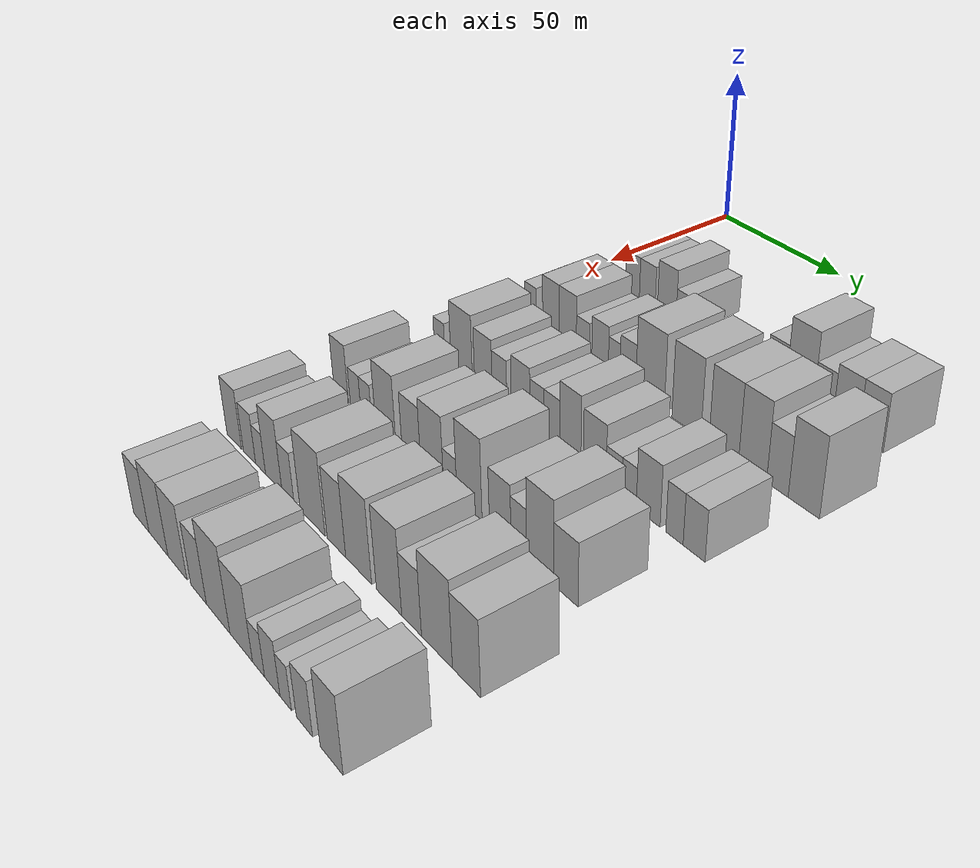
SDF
<sdf version="1.6">
 <world name="default">
  <model name="building_65">
   <static>1</static>
   <pose>50.0000 21.7936 0 0.000000 0.000000 0.000000</pose>
   <link name="link">
    <pose>0 0 7.50 0 0 0</pose>
    <collision name="collision"><geometry><box><size>20.0000 6.4729 15.0000</size></box></geometry></collision>
    <visual name="visual">
     <cast_shadows>0</cast_shadows>
     <geometry><box><size>20.0000 6.4729 15.0000</size></box></geometry>
     <material>
      <script>
       <uri>model://HANNAS_wall/materials/scripts</uri>
       <uri>model://HANNAS_wall/materials/textures</uri>
       <name>vrc/HANNAS_wall</name>
      </script>
     </material>
    </visual>
   </link>
  </model>
  <model name="building_66">
   <static>1</static>
   <pose>50.0000 28.6067 0 0.000000 0.000000 0.000000</pose>
   <link name="link">
    <pose>0 0 7.50 0 0 0</pose>
    <collision name="collision"><geometry><box><size>20.0000 7.1533 15.0000</size></box></geometry></collision>
    <visual name="visual">
     <cast_shadows>0</cast_shadows>
     <geometry><box><size>20.0000 7.1533 15.0000</size></box></geometry>
     <material>
      <script>
       <uri>model://HANNAS_wall/materials/scripts</uri>
       <uri>model://HANNAS_wall/materials/textures</uri>
       <name>vrc/HANNAS_wall</name>
      </script>
     </material>
    </visual>
   </link>
  </model>
  <model name="building_67">
   <static>1</static>
   <pose>50.0000 37.2827 0 0.000000 0.000000 0.000000</pose>
   <link name="link">
    <pose>0 0 9.00 0 0 0</pose>
    <collision name="collision"><geometry><box><size>20.0000 8.1987 18.0000</size></box></geometry></collision>
    <visual name="visual">
     <cast_shadows>0</cast_shadows>
     <geometry><box><size>20.0000 8.1987 18.0000</size></box></geometry>
     <material>
      <script>
       <uri>model://HANNAS_wall/materials/scripts</uri>
       <uri>model://HANNAS_wall/materials/textures</uri>
       <name>vrc/HANNAS_wall</name>
      </script>
     </material>
    </visual>
   </link>
  </model>
  <model name="building_68">
   <static>1</static>
   <pose>50.0000 44.2342 0 0.000000 0.000000 0.000000</pose>
   <link name="link">
    <pose>0 0 6.00 0 0 0</pose>
    <collision name="collision"><geometry><box><size>20.0000 5.7043 12.0000</size></box></geometry></collision>
    <visual name="visual">
     <cast_shadows>0</cast_shadows>
     <geometry><box><size>20.0000 5.7043 12.0000</size></box></geometry>
     <material>
      <script>
       <uri>model://HANNAS_wall/materials/scripts</uri>
       <uri>model://HANNAS_wall/materials/textures</uri>
       <name>vrc/HANNAS_wall</name>
      </script>
     </material>
    </visual>
   </link>
  </model>
  <model name="building_69">
   <static>1</static>
   <pose>50.0000 81.9519 0 0.000000 0.000000 0.000000</pose>
   <link name="link">
    <pose>0 0 7.50 0 0 0</pose>
    <collision name="collision"><geometry><box><size>20.0000 7.2437 15.0000</size></box></geometry></collision>
    <visual name="visual">
     <cast_shadows>0</cast_shadows>
     <geometry><box><size>20.0000 7.2437 15.0000</size></box></geometry>
     <material>
      <script>
       <uri>model://HANNAS_wall/materials/scripts</uri>
       <uri>model://HANNAS_wall/materials/textures</uri>
       <name>vrc/HANNAS_wall</name>
      </script>
     </material>
    </visual>
   </link>
  </model>
  <model name="building_70">
   <static>1</static>
   <pose>50.0000 90.5914 0 0.000000 0.000000 0.000000</pose>
   <link name="link">
    <pose>0 0 12.00 0 0 0</pose>
    <collision name="collision"><geometry><box><size>20.0000 10.0355 24.0000</size></box></geometry></collision>
    <visual name="visual">
     <cast_shadows>0</cast_shadows>
     <geometry><box><size>20.0000 10.0355 24.0000</size></box></geometry>
     <material>
      <script>
       <uri>model://HANNAS_wall/materials/scripts</uri>
       <uri>model://HANNAS_wall/materials/textures</uri>
       <name>vrc/HANNAS_wall</name>
      </script>
     </material>
    </visual>
   </link>
  </model>
  <model name="building_71">
   <static>1</static>
   <pose>50.0000 99.0993 0 0.000000 0.000000 0.000000</pose>
   <link name="link">
    <pose>0 0 7.50 0 0 0</pose>
    <collision name="collision"><geometry><box><size>20.0000 6.9803 15.0000</size></box></geometry></collision>
    <visual name="visual">
     <cast_shadows>0</cast_shadows>
     <geometry><box><size>20.0000 6.9803 15.0000</size></box></geometry>
     <material>
      <script>
       <uri>model://HANNAS_wall/materials/scripts</uri>
       <uri>model://HANNAS_wall/materials/textures</uri>
       <name>vrc/HANNAS_wall</name>
      </script>
     </material>
    </visual>
   </link>
  </model>
  <model name="building_72">
   <static>1</static>
   <pose>50.0000 107.0059 0 0.000000 0.000000 0.000000</pose>
   <link name="link">
    <pose>0 0 9.00 0 0 0</pose>
    <collision name="collision"><geometry><box><size>20.0000 8.8329 18.0000</size></box></geometry></collision>
    <visual name="visual">
     <cast_shadows>0</cast_shadows>
     <geometry><box><size>20.0000 8.8329 18.0000</size></box></geometry>
     <material>
      <script>
       <uri>model://HANNAS_wall/materials/scripts</uri>
       <uri>model://HANNAS_wall/materials/textures</uri>
       <name>vrc/HANNAS_wall</name>
      </script>
     </material>
    </visual>
   </link>
  </model>
  <model name="building_73">
   <static>1</static>
   <pose>50.0000 115.6059 0 0.000000 0.000000 0.000000</pose>
   <link name="link">
    <pose>0 0 9.00 0 0 0</pose>
    <collision name="collision"><geometry><box><size>20.0000 8.3672 18.0000</size></box></geometry></collision>
    <visual name="visual">
     <cast_shadows>0</cast_shadows>
     <geometry><box><size>20.0000 8.3672 18.0000</size></box></geometry>
     <material>
      <script>
       <uri>model://HANNAS_wall/materials/scripts</uri>
       <uri>model://HANNAS_wall/materials/textures</uri>
       <name>vrc/HANNAS_wall</name>
      </script>
     </material>
    </visual>
   </link>
  </model>
  <model name="building_185">
   <static>1</static>
   <pose>82.0000 13.7027 0 0.000000 0.000000 0.000000</pose>
   <link name="link">
    <pose>0 0 6.00 0 0 0</pose>
    <collision name="collision"><geometry><box><size>20.0000 5.6120 12.0000</size></box></geometry></collision>
    <visual name="visual">
     <cast_shadows>0</cast_shadows>
     <geometry><box><size>20.0000 5.6120 12.0000</size></box></geometry>
     <material>
      <script>
       <uri>model://HANNAS_wall/materials/scripts</uri>
       <uri>model://HANNAS_wall/materials/textures</uri>
       <name>vrc/HANNAS_wall</name>
      </script>
     </material>
    </visual>
   </link>
  </model>
  <model name="building_186">
   <static>1</static>
   <pose>82.0000 23.3266 0 0.000000 0.000000 0.000000</pose>
   <link name="link">
    <pose>0 0 9.00 0 0 0</pose>
    <collision name="collision"><geometry><box><size>20.0000 7.6357 18.0000</size></box></geometry></collision>
    <visual name="visual">
     <cast_shadows>0</cast_shadows>
     <geometry><box><size>20.0000 7.6357 18.0000</size></box></geometry>
     <material>
      <script>
       <uri>model://HANNAS_wall/materials/scripts</uri>
       <uri>model://HANNAS_wall/materials/textures</uri>
       <name>vrc/HANNAS_wall</name>
      </script>
     </material>
    </visual>
   </link>
  </model>
  <model name="building_187">
   <static>1</static>
   <pose>82.0000 31.1403 0 0.000000 0.000000 0.000000</pose>
   <link name="link">
    <pose>0 0 9.00 0 0 0</pose>
    <collision name="collision"><geometry><box><size>20.0000 7.9918 18.0000</size></box></geometry></collision>
    <visual name="visual">
     <cast_shadows>0</cast_shadows>
     <geometry><box><size>20.0000 7.9918 18.0000</size></box></geometry>
     <material>
      <script>
       <uri>model://HANNAS_wall/materials/scripts</uri>
       <uri>model://HANNAS_wall/materials/textures</uri>
       <name>vrc/HANNAS_wall</name>
      </script>
     </material>
    </visual>
   </link>
  </model>
  <model name="building_188">
   <static>1</static>
   <pose>82.0000 38.1059 0 0.000000 0.000000 0.000000</pose>
   <link name="link">
    <pose>0 0 6.00 0 0 0</pose>
    <collision name="collision"><geometry><box><size>20.0000 5.9394 12.0000</size></box></geometry></collision>
    <visual name="visual">
     <cast_shadows>0</cast_shadows>
     <geometry><box><size>20.0000 5.9394 12.0000</size></box></geometry>
     <material>
      <script>
       <uri>model://HANNAS_wall/materials/scripts</uri>
       <uri>model://HANNAS_wall/materials/textures</uri>
       <name>vrc/HANNAS_wall</name>
      </script>
     </material>
    </visual>
   </link>
  </model>
  <model name="building_189">
   <static>1</static>
   <pose>82.0000 45.7054 0 0.000000 0.000000 0.000000</pose>
   <link name="link">
    <pose>0 0 7.50 0 0 0</pose>
    <collision name="collision"><geometry><box><size>20.0000 7.2595 15.0000</size></box></geometry></collision>
    <visual name="visual">
     <cast_shadows>0</cast_shadows>
     <geometry><box><size>20.0000 7.2595 15.0000</size></box></geometry>
     <material>
      <script>
       <uri>model://HANNAS_wall/materials/scripts</uri>
       <uri>model://HANNAS_wall/materials/textures</uri>
       <name>vrc/HANNAS_wall</name>
      </script>
     </material>
    </visual>
   </link>
  </model>
  <model name="building_190">
   <static>1</static>
   <pose>82.0000 51.8095 0 0.000000 0.000000 0.000000</pose>
   <link name="link">
    <pose>0 0 6.00 0 0 0</pose>
    <collision name="collision"><geometry><box><size>20.0000 4.9488 12.0000</size></box></geometry></collision>
    <visual name="visual">
     <cast_shadows>0</cast_shadows>
     <geometry><box><size>20.0000 4.9488 12.0000</size></box></geometry>
     <material>
      <script>
       <uri>model://HANNAS_wall/materials/scripts</uri>
       <uri>model://HANNAS_wall/materials/textures</uri>
       <name>vrc/HANNAS_wall</name>
      </script>
     </material>
    </visual>
   </link>
  </model>
  <model name="building_191">
   <static>1</static>
   <pose>82.0000 57.6232 0 0.000000 0.000000 0.000000</pose>
   <link name="link">
    <pose>0 0 7.50 0 0 0</pose>
    <collision name="collision"><geometry><box><size>20.0000 6.6786 15.0000</size></box></geometry></collision>
    <visual name="visual">
     <cast_shadows>0</cast_shadows>
     <geometry><box><size>20.0000 6.6786 15.0000</size></box></geometry>
     <material>
      <script>
       <uri>model://HANNAS_wall/materials/scripts</uri>
       <uri>model://HANNAS_wall/materials/textures</uri>
       <name>vrc/HANNAS_wall</name>
      </script>
     </material>
    </visual>
   </link>
  </model>
  <model name="building_192">
   <static>1</static>
   <pose>82.0000 66.7649 0 0.000000 0.000000 0.000000</pose>
   <link name="link">
    <pose>0 0 12.00 0 0 0</pose>
    <collision name="collision"><geometry><box><size>20.0000 11.6047 24.0000</size></box></geometry></collision>
    <visual name="visual">
     <cast_shadows>0</cast_shadows>
     <geometry><box><size>20.0000 11.6047 24.0000</size></box></geometry>
     <material>
      <script>
       <uri>model://HANNAS_wall/materials/scripts</uri>
       <uri>model://HANNAS_wall/materials/textures</uri>
       <name>vrc/HANNAS_wall</name>
      </script>
     </material>
    </visual>
   </link>
  </model>
  <model name="building_193">
   <static>1</static>
   <pose>82.0000 81.1708 0 0.000000 0.000000 0.000000</pose>
   <link name="link">
    <pose>0 0 12.00 0 0 0</pose>
    <collision name="collision"><geometry><box><size>20.0000 11.2072 24.0000</size></box></geometry></collision>
    <visual name="visual">
     <cast_shadows>0</cast_shadows>
     <geometry><box><size>20.0000 11.2072 24.0000</size></box></geometry>
     <material>
      <script>
       <uri>model://HANNAS_wall/materials/scripts</uri>
       <uri>model://HANNAS_wall/materials/textures</uri>
       <name>vrc/HANNAS_wall</name>
      </script>
     </material>
    </visual>
   </link>
  </model>
  <model name="building_194">
   <static>1</static>
   <pose>82.0000 95.1800 0 0.000000 0.000000 0.000000</pose>
   <link name="link">
    <pose>0 0 12.00 0 0 0</pose>
    <collision name="collision"><geometry><box><size>20.0000 10.8113 24.0000</size></box></geometry></collision>
    <visual name="visual">
     <cast_shadows>0</cast_shadows>
     <geometry><box><size>20.0000 10.8113 24.0000</size></box></geometry>
     <material>
      <script>
       <uri>model://HANNAS_wall/materials/scripts</uri>
       <uri>model://HANNAS_wall/materials/textures</uri>
       <name>vrc/HANNAS_wall</name>
      </script>
     </material>
    </visual>
   </link>
  </model>
  <model name="building_195">
   <static>1</static>
   <pose>82.0000 105.5067 0 0.000000 0.000000 0.000000</pose>
   <link name="link">
    <pose>0 0 12.00 0 0 0</pose>
    <collision name="collision"><geometry><box><size>20.0000 9.8421 24.0000</size></box></geometry></collision>
    <visual name="visual">
     <cast_shadows>0</cast_shadows>
     <geometry><box><size>20.0000 9.8421 24.0000</size></box></geometry>
     <material>
      <script>
       <uri>model://HANNAS_wall/materials/scripts</uri>
       <uri>model://HANNAS_wall/materials/textures</uri>
       <name>vrc/HANNAS_wall</name>
      </script>
     </material>
    </visual>
   </link>
  </model>
  <model name="building_196">
   <static>1</static>
   <pose>82.0000 114.0996 0 0.000000 0.000000 0.000000</pose>
   <link name="link">
    <pose>0 0 9.00 0 0 0</pose>
    <collision name="collision"><geometry><box><size>20.0000 7.3436 18.0000</size></box></geometry></collision>
    <visual name="visual">
     <cast_shadows>0</cast_shadows>
     <geometry><box><size>20.0000 7.3436 18.0000</size></box></geometry>
     <material>
      <script>
       <uri>model://HANNAS_wall/materials/scripts</uri>
       <uri>model://HANNAS_wall/materials/textures</uri>
       <name>vrc/HANNAS_wall</name>
      </script>
     </material>
    </visual>
   </link>
  </model>
  <model name="building_197">
   <static>1</static>
   <pose>82.0000 122.9147 0 0.000000 0.000000 0.000000</pose>
   <link name="link">
    <pose>0 0 12.00 0 0 0</pose>
    <collision name="collision"><geometry><box><size>20.0000 10.2866 24.0000</size></box></geometry></collision>
    <visual name="visual">
     <cast_shadows>0</cast_shadows>
     <geometry><box><size>20.0000 10.2866 24.0000</size></box></geometry>
     <material>
      <script>
       <uri>model://HANNAS_wall/materials/scripts</uri>
       <uri>model://HANNAS_wall/materials/textures</uri>
       <name>vrc/HANNAS_wall</name>
      </script>
     </material>
    </visual>
   </link>
  </model>
  <model name="building_301">
   <static>1</static>
   <pose>114.0000 13.9475 0 0.000000 0.000000 0.000000</pose>
   <link name="link">
    <pose>0 0 6.00 0 0 0</pose>
    <collision name="collision"><geometry><box><size>20.0000 5.3176 12.0000</size></box></geometry></collision>
    <visual name="visual">
     <cast_shadows>0</cast_shadows>
     <geometry><box><size>20.0000 5.3176 12.0000</size></box></geometry>
     <material>
      <script>
       <uri>model://HANNAS_wall/materials/scripts</uri>
       <uri>model://HANNAS_wall/materials/textures</uri>
       <name>vrc/HANNAS_wall</name>
      </script>
     </material>
    </visual>
   </link>
  </model>
  <model name="building_302">
   <static>1</static>
   <pose>114.0000 24.8426 0 0.000000 0.000000 0.000000</pose>
   <link name="link">
    <pose>0 0 10.50 0 0 0</pose>
    <collision name="collision"><geometry><box><size>20.0000 10.4727 21.0000</size></box></geometry></collision>
    <visual name="visual">
     <cast_shadows>0</cast_shadows>
     <geometry><box><size>20.0000 10.4727 21.0000</size></box></geometry>
     <material>
      <script>
       <uri>model://HANNAS_wall/materials/scripts</uri>
       <uri>model://HANNAS_wall/materials/textures</uri>
       <name>vrc/HANNAS_wall</name>
      </script>
     </material>
    </visual>
   </link>
  </model>
  <model name="building_303">
   <static>1</static>
   <pose>114.0000 35.2411 0 0.000000 0.000000 0.000000</pose>
   <link name="link">
    <pose>0 0 9.00 0 0 0</pose>
    <collision name="collision"><geometry><box><size>20.0000 8.3243 18.0000</size></box></geometry></collision>
    <visual name="visual">
     <cast_shadows>0</cast_shadows>
     <geometry><box><size>20.0000 8.3243 18.0000</size></box></geometry>
     <material>
      <script>
       <uri>model://HANNAS_wall/materials/scripts</uri>
       <uri>model://HANNAS_wall/materials/textures</uri>
       <name>vrc/HANNAS_wall</name>
      </script>
     </material>
    </visual>
   </link>
  </model>
  <model name="building_304">
   <static>1</static>
   <pose>114.0000 42.7486 0 0.000000 0.000000 0.000000</pose>
   <link name="link">
    <pose>0 0 7.50 0 0 0</pose>
    <collision name="collision"><geometry><box><size>20.0000 6.6907 15.0000</size></box></geometry></collision>
    <visual name="visual">
     <cast_shadows>0</cast_shadows>
     <geometry><box><size>20.0000 6.6907 15.0000</size></box></geometry>
     <material>
      <script>
       <uri>model://HANNAS_wall/materials/scripts</uri>
       <uri>model://HANNAS_wall/materials/textures</uri>
       <name>vrc/HANNAS_wall</name>
      </script>
     </material>
    </visual>
   </link>
  </model>
  <model name="building_305">
   <static>1</static>
   <pose>114.0000 52.2071 0 0.000000 0.000000 0.000000</pose>
   <link name="link">
    <pose>0 0 9.00 0 0 0</pose>
    <collision name="collision"><geometry><box><size>20.0000 8.2265 18.0000</size></box></geometry></collision>
    <visual name="visual">
     <cast_shadows>0</cast_shadows>
     <geometry><box><size>20.0000 8.2265 18.0000</size></box></geometry>
     <material>
      <script>
       <uri>model://HANNAS_wall/materials/scripts</uri>
       <uri>model://HANNAS_wall/materials/textures</uri>
       <name>vrc/HANNAS_wall</name>
      </script>
     </material>
    </visual>
   </link>
  </model>
  <model name="building_306">
   <static>1</static>
   <pose>114.0000 59.3452 0 0.000000 0.000000 0.000000</pose>
   <link name="link">
    <pose>0 0 7.50 0 0 0</pose>
    <collision name="collision"><geometry><box><size>20.0000 6.0496 15.0000</size></box></geometry></collision>
    <visual name="visual">
     <cast_shadows>0</cast_shadows>
     <geometry><box><size>20.0000 6.0496 15.0000</size></box></geometry>
     <material>
      <script>
       <uri>model://HANNAS_wall/materials/scripts</uri>
       <uri>model://HANNAS_wall/materials/textures</uri>
       <name>vrc/HANNAS_wall</name>
      </script>
     </material>
    </visual>
   </link>
  </model>
  <model name="building_307">
   <static>1</static>
   <pose>114.0000 65.6597 0 0.000000 0.000000 0.000000</pose>
   <link name="link">
    <pose>0 0 7.50 0 0 0</pose>
    <collision name="collision"><geometry><box><size>20.0000 6.5793 15.0000</size></box></geometry></collision>
    <visual name="visual">
     <cast_shadows>0</cast_shadows>
     <geometry><box><size>20.0000 6.5793 15.0000</size></box></geometry>
     <material>
      <script>
       <uri>model://HANNAS_wall/materials/scripts</uri>
       <uri>model://HANNAS_wall/materials/textures</uri>
       <name>vrc/HANNAS_wall</name>
      </script>
     </material>
    </visual>
   </link>
  </model>
  <model name="building_308">
   <static>1</static>
   <pose>114.0000 73.2250 0 0.000000 0.000000 0.000000</pose>
   <link name="link">
    <pose>0 0 10.50 0 0 0</pose>
    <collision name="collision"><geometry><box><size>20.0000 8.5515 21.0000</size></box></geometry></collision>
    <visual name="visual">
     <cast_shadows>0</cast_shadows>
     <geometry><box><size>20.0000 8.5515 21.0000</size></box></geometry>
     <material>
      <script>
       <uri>model://HANNAS_wall/materials/scripts</uri>
       <uri>model://HANNAS_wall/materials/textures</uri>
       <name>vrc/HANNAS_wall</name>
      </script>
     </material>
    </visual>
   </link>
  </model>
  <model name="building_309">
   <static>1</static>
   <pose>114.0000 82.9486 0 0.000000 0.000000 0.000000</pose>
   <link name="link">
    <pose>0 0 9.00 0 0 0</pose>
    <collision name="collision"><geometry><box><size>20.0000 8.8956 18.0000</size></box></geometry></collision>
    <visual name="visual">
     <cast_shadows>0</cast_shadows>
     <geometry><box><size>20.0000 8.8956 18.0000</size></box></geometry>
     <material>
      <script>
       <uri>model://HANNAS_wall/materials/scripts</uri>
       <uri>model://HANNAS_wall/materials/textures</uri>
       <name>vrc/HANNAS_wall</name>
      </script>
     </material>
    </visual>
   </link>
  </model>
  <model name="building_310">
   <static>1</static>
   <pose>114.0000 90.3458 0 0.000000 0.000000 0.000000</pose>
   <link name="link">
    <pose>0 0 6.00 0 0 0</pose>
    <collision name="collision"><geometry><box><size>20.0000 5.8988 12.0000</size></box></geometry></collision>
    <visual name="visual">
     <cast_shadows>0</cast_shadows>
     <geometry><box><size>20.0000 5.8988 12.0000</size></box></geometry>
     <material>
      <script>
       <uri>model://HANNAS_wall/materials/scripts</uri>
       <uri>model://HANNAS_wall/materials/textures</uri>
       <name>vrc/HANNAS_wall</name>
      </script>
     </material>
    </visual>
   </link>
  </model>
  <model name="building_311">
   <static>1</static>
   <pose>114.0000 96.0281 0 0.000000 0.000000 0.000000</pose>
   <link name="link">
    <pose>0 0 6.00 0 0 0</pose>
    <collision name="collision"><geometry><box><size>20.0000 5.4659 12.0000</size></box></geometry></collision>
    <visual name="visual">
     <cast_shadows>0</cast_shadows>
     <geometry><box><size>20.0000 5.4659 12.0000</size></box></geometry>
     <material>
      <script>
       <uri>model://HANNAS_wall/materials/scripts</uri>
       <uri>model://HANNAS_wall/materials/textures</uri>
       <name>vrc/HANNAS_wall</name>
      </script>
     </material>
    </visual>
   </link>
  </model>
  <model name="building_312">
   <static>1</static>
   <pose>114.0000 103.0811 0 0.000000 0.000000 0.000000</pose>
   <link name="link">
    <pose>0 0 9.00 0 0 0</pose>
    <collision name="collision"><geometry><box><size>20.0000 8.6402 18.0000</size></box></geometry></collision>
    <visual name="visual">
     <cast_shadows>0</cast_shadows>
     <geometry><box><size>20.0000 8.6402 18.0000</size></box></geometry>
     <material>
      <script>
       <uri>model://HANNAS_wall/materials/scripts</uri>
       <uri>model://HANNAS_wall/materials/textures</uri>
       <name>vrc/HANNAS_wall</name>
      </script>
     </material>
    </visual>
   </link>
  </model>
  <model name="building_313">
   <static>1</static>
   <pose>114.0000 112.4127 0 0.000000 0.000000 0.000000</pose>
   <link name="link">
    <pose>0 0 7.50 0 0 0</pose>
    <collision name="collision"><geometry><box><size>20.0000 6.0228 15.0000</size></box></geometry></collision>
    <visual name="visual">
     <cast_shadows>0</cast_shadows>
     <geometry><box><size>20.0000 6.0228 15.0000</size></box></geometry>
     <material>
      <script>
       <uri>model://HANNAS_wall/materials/scripts</uri>
       <uri>model://HANNAS_wall/materials/textures</uri>
       <name>vrc/HANNAS_wall</name>
      </script>
     </material>
    </visual>
   </link>
  </model>
  <model name="building_314">
   <static>1</static>
   <pose>114.0000 119.1524 0 0.000000 0.000000 0.000000</pose>
   <link name="link">
    <pose>0 0 7.50 0 0 0</pose>
    <collision name="collision"><geometry><box><size>20.0000 7.4566 15.0000</size></box></geometry></collision>
    <visual name="visual">
     <cast_shadows>0</cast_shadows>
     <geometry><box><size>20.0000 7.4566 15.0000</size></box></geometry>
     <material>
      <script>
       <uri>model://HANNAS_wall/materials/scripts</uri>
       <uri>model://HANNAS_wall/materials/textures</uri>
       <name>vrc/HANNAS_wall</name>
      </script>
     </material>
    </visual>
   </link>
  </model>
  <model name="building_420">
   <static>1</static>
   <pose>146.0000 14.5442 0 0.000000 0.000000 0.000000</pose>
   <link name="link">
    <pose>0 0 9.00 0 0 0</pose>
    <collision name="collision"><geometry><box><size>20.0000 7.5917 18.0000</size></box></geometry></collision>
    <visual name="visual">
     <cast_shadows>0</cast_shadows>
     <geometry><box><size>20.0000 7.5917 18.0000</size></box></geometry>
     <material>
      <script>
       <uri>model://HANNAS_wall/materials/scripts</uri>
       <uri>model://HANNAS_wall/materials/textures</uri>
       <name>vrc/HANNAS_wall</name>
      </script>
     </material>
    </visual>
   </link>
  </model>
  <model name="building_421">
   <static>1</static>
   <pose>146.0000 22.0902 0 0.000000 0.000000 0.000000</pose>
   <link name="link">
    <pose>0 0 6.00 0 0 0</pose>
    <collision name="collision"><geometry><box><size>20.0000 5.5003 12.0000</size></box></geometry></collision>
    <visual name="visual">
     <cast_shadows>0</cast_shadows>
     <geometry><box><size>20.0000 5.5003 12.0000</size></box></geometry>
     <material>
      <script>
       <uri>model://HANNAS_wall/materials/scripts</uri>
       <uri>model://HANNAS_wall/materials/textures</uri>
       <name>vrc/HANNAS_wall</name>
      </script>
     </material>
    </visual>
   </link>
  </model>
  <model name="building_422">
   <static>1</static>
   <pose>146.0000 27.5467 0 0.000000 0.000000 0.000000</pose>
   <link name="link">
    <pose>0 0 6.00 0 0 0</pose>
    <collision name="collision"><geometry><box><size>20.0000 5.4125 12.0000</size></box></geometry></collision>
    <visual name="visual">
     <cast_shadows>0</cast_shadows>
     <geometry><box><size>20.0000 5.4125 12.0000</size></box></geometry>
     <material>
      <script>
       <uri>model://HANNAS_wall/materials/scripts</uri>
       <uri>model://HANNAS_wall/materials/textures</uri>
       <name>vrc/HANNAS_wall</name>
      </script>
     </material>
    </visual>
   </link>
  </model>
  <model name="building_423">
   <static>1</static>
   <pose>146.0000 37.1587 0 0.000000 0.000000 0.000000</pose>
   <link name="link">
    <pose>0 0 10.50 0 0 0</pose>
    <collision name="collision"><geometry><box><size>20.0000 9.8117 21.0000</size></box></geometry></collision>
    <visual name="visual">
     <cast_shadows>0</cast_shadows>
     <geometry><box><size>20.0000 9.8117 21.0000</size></box></geometry>
     <material>
      <script>
       <uri>model://HANNAS_wall/materials/scripts</uri>
       <uri>model://HANNAS_wall/materials/textures</uri>
       <name>vrc/HANNAS_wall</name>
      </script>
     </material>
    </visual>
   </link>
  </model>
  <model name="building_424">
   <static>1</static>
   <pose>146.0000 49.4088 0 0.000000 0.000000 0.000000</pose>
   <link name="link">
    <pose>0 0 9.00 0 0 0</pose>
    <collision name="collision"><geometry><box><size>20.0000 8.6884 18.0000</size></box></geometry></collision>
    <visual name="visual">
     <cast_shadows>0</cast_shadows>
     <geometry><box><size>20.0000 8.6884 18.0000</size></box></geometry>
     <material>
      <script>
       <uri>model://HANNAS_wall/materials/scripts</uri>
       <uri>model://HANNAS_wall/materials/textures</uri>
       <name>vrc/HANNAS_wall</name>
      </script>
     </material>
    </visual>
   </link>
  </model>
  <model name="building_425">
   <static>1</static>
   <pose>146.0000 58.8672 0 0.000000 0.000000 0.000000</pose>
   <link name="link">
    <pose>0 0 10.50 0 0 0</pose>
    <collision name="collision"><geometry><box><size>20.0000 10.2285 21.0000</size></box></geometry></collision>
    <visual name="visual">
     <cast_shadows>0</cast_shadows>
     <geometry><box><size>20.0000 10.2285 21.0000</size></box></geometry>
     <material>
      <script>
       <uri>model://HANNAS_wall/materials/scripts</uri>
       <uri>model://HANNAS_wall/materials/textures</uri>
       <name>vrc/HANNAS_wall</name>
      </script>
     </material>
    </visual>
   </link>
  </model>
  <model name="building_426">
   <static>1</static>
   <pose>146.0000 66.8845 0 0.000000 0.000000 0.000000</pose>
   <link name="link">
    <pose>0 0 6.00 0 0 0</pose>
    <collision name="collision"><geometry><box><size>20.0000 5.8061 12.0000</size></box></geometry></collision>
    <visual name="visual">
     <cast_shadows>0</cast_shadows>
     <geometry><box><size>20.0000 5.8061 12.0000</size></box></geometry>
     <material>
      <script>
       <uri>model://HANNAS_wall/materials/scripts</uri>
       <uri>model://HANNAS_wall/materials/textures</uri>
       <name>vrc/HANNAS_wall</name>
      </script>
     </material>
    </visual>
   </link>
  </model>
  <model name="building_427">
   <static>1</static>
   <pose>146.0000 75.0704 0 0.000000 0.000000 0.000000</pose>
   <link name="link">
    <pose>0 0 12.00 0 0 0</pose>
    <collision name="collision"><geometry><box><size>20.0000 10.5656 24.0000</size></box></geometry></collision>
    <visual name="visual">
     <cast_shadows>0</cast_shadows>
     <geometry><box><size>20.0000 10.5656 24.0000</size></box></geometry>
     <material>
      <script>
       <uri>model://HANNAS_wall/materials/scripts</uri>
       <uri>model://HANNAS_wall/materials/textures</uri>
       <name>vrc/HANNAS_wall</name>
      </script>
     </material>
    </visual>
   </link>
  </model>
  <model name="building_428">
   <static>1</static>
   <pose>146.0000 87.6564 0 0.000000 0.000000 0.000000</pose>
   <link name="link">
    <pose>0 0 9.00 0 0 0</pose>
    <collision name="collision"><geometry><box><size>20.0000 8.6064 18.0000</size></box></geometry></collision>
    <visual name="visual">
     <cast_shadows>0</cast_shadows>
     <geometry><box><size>20.0000 8.6064 18.0000</size></box></geometry>
     <material>
      <script>
       <uri>model://HANNAS_wall/materials/scripts</uri>
       <uri>model://HANNAS_wall/materials/textures</uri>
       <name>vrc/HANNAS_wall</name>
      </script>
     </material>
    </visual>
   </link>
  </model>
  <model name="building_429">
   <static>1</static>
   <pose>146.0000 94.9779 0 0.000000 0.000000 0.000000</pose>
   <link name="link">
    <pose>0 0 7.50 0 0 0</pose>
    <collision name="collision"><geometry><box><size>20.0000 6.0366 15.0000</size></box></geometry></collision>
    <visual name="visual">
     <cast_shadows>0</cast_shadows>
     <geometry><box><size>20.0000 6.0366 15.0000</size></box></geometry>
     <material>
      <script>
       <uri>model://HANNAS_wall/materials/scripts</uri>
       <uri>model://HANNAS_wall/materials/textures</uri>
       <name>vrc/HANNAS_wall</name>
      </script>
     </material>
    </visual>
   </link>
  </model>
  <model name="building_430">
   <static>1</static>
   <pose>146.0000 103.0679 0 0.000000 0.000000 0.000000</pose>
   <link name="link">
    <pose>0 0 12.00 0 0 0</pose>
    <collision name="collision"><geometry><box><size>20.0000 10.1435 24.0000</size></box></geometry></collision>
    <visual name="visual">
     <cast_shadows>0</cast_shadows>
     <geometry><box><size>20.0000 10.1435 24.0000</size></box></geometry>
     <material>
      <script>
       <uri>model://HANNAS_wall/materials/scripts</uri>
       <uri>model://HANNAS_wall/materials/textures</uri>
       <name>vrc/HANNAS_wall</name>
      </script>
     </material>
    </visual>
   </link>
  </model>
  <model name="building_431">
   <static>1</static>
   <pose>146.0000 112.4768 0 0.000000 0.000000 0.000000</pose>
   <link name="link">
    <pose>0 0 9.00 0 0 0</pose>
    <collision name="collision"><geometry><box><size>20.0000 8.6742 18.0000</size></box></geometry></collision>
    <visual name="visual">
     <cast_shadows>0</cast_shadows>
     <geometry><box><size>20.0000 8.6742 18.0000</size></box></geometry>
     <material>
      <script>
       <uri>model://HANNAS_wall/materials/scripts</uri>
       <uri>model://HANNAS_wall/materials/textures</uri>
       <name>vrc/HANNAS_wall</name>
      </script>
     </material>
    </visual>
   </link>
  </model>
  <model name="building_544">
   <static>1</static>
   <pose>178.0000 15.6599 0 0.000000 0.000000 0.000000</pose>
   <link name="link">
    <pose>0 0 9.00 0 0 0</pose>
    <collision name="collision"><geometry><box><size>20.0000 8.2263 18.0000</size></box></geometry></collision>
    <visual name="visual">
     <cast_shadows>0</cast_shadows>
     <geometry><box><size>20.0000 8.2263 18.0000</size></box></geometry>
     <material>
      <script>
       <uri>model://HANNAS_wall/materials/scripts</uri>
       <uri>model://HANNAS_wall/materials/textures</uri>
       <name>vrc/HANNAS_wall</name>
      </script>
     </material>
    </visual>
   </link>
  </model>
  <model name="building_545">
   <static>1</static>
   <pose>178.0000 24.1161 0 0.000000 0.000000 0.000000</pose>
   <link name="link">
    <pose>0 0 7.50 0 0 0</pose>
    <collision name="collision"><geometry><box><size>20.0000 6.6860 15.0000</size></box></geometry></collision>
    <visual name="visual">
     <cast_shadows>0</cast_shadows>
     <geometry><box><size>20.0000 6.6860 15.0000</size></box></geometry>
     <material>
      <script>
       <uri>model://HANNAS_wall/materials/scripts</uri>
       <uri>model://HANNAS_wall/materials/textures</uri>
       <name>vrc/HANNAS_wall</name>
      </script>
     </material>
    </visual>
   </link>
  </model>
  <model name="building_546">
   <static>1</static>
   <pose>178.0000 30.0866 0 0.000000 0.000000 0.000000</pose>
   <link name="link">
    <pose>0 0 6.00 0 0 0</pose>
    <collision name="collision"><geometry><box><size>20.0000 5.2550 12.0000</size></box></geometry></collision>
    <visual name="visual">
     <cast_shadows>0</cast_shadows>
     <geometry><box><size>20.0000 5.2550 12.0000</size></box></geometry>
     <material>
      <script>
       <uri>model://HANNAS_wall/materials/scripts</uri>
       <uri>model://HANNAS_wall/materials/textures</uri>
       <name>vrc/HANNAS_wall</name>
      </script>
     </material>
    </visual>
   </link>
  </model>
  <model name="building_547">
   <static>1</static>
   <pose>178.0000 36.9971 0 0.000000 0.000000 0.000000</pose>
   <link name="link">
    <pose>0 0 10.50 0 0 0</pose>
    <collision name="collision"><geometry><box><size>20.0000 8.5660 21.0000</size></box></geometry></collision>
    <visual name="visual">
     <cast_shadows>0</cast_shadows>
     <geometry><box><size>20.0000 8.5660 21.0000</size></box></geometry>
     <material>
      <script>
       <uri>model://HANNAS_wall/materials/scripts</uri>
       <uri>model://HANNAS_wall/materials/textures</uri>
       <name>vrc/HANNAS_wall</name>
      </script>
     </material>
    </visual>
   </link>
  </model>
  <model name="building_548">
   <static>1</static>
   <pose>178.0000 44.3420 0 0.000000 0.000000 0.000000</pose>
   <link name="link">
    <pose>0 0 7.50 0 0 0</pose>
    <collision name="collision"><geometry><box><size>20.0000 6.1239 15.0000</size></box></geometry></collision>
    <visual name="visual">
     <cast_shadows>0</cast_shadows>
     <geometry><box><size>20.0000 6.1239 15.0000</size></box></geometry>
     <material>
      <script>
       <uri>model://HANNAS_wall/materials/scripts</uri>
       <uri>model://HANNAS_wall/materials/textures</uri>
       <name>vrc/HANNAS_wall</name>
      </script>
     </material>
    </visual>
   </link>
  </model>
  <model name="building_549">
   <static>1</static>
   <pose>178.0000 56.3689 0 0.000000 0.000000 0.000000</pose>
   <link name="link">
    <pose>0 0 12.00 0 0 0</pose>
    <collision name="collision"><geometry><box><size>20.0000 11.9300 24.0000</size></box></geometry></collision>
    <visual name="visual">
     <cast_shadows>0</cast_shadows>
     <geometry><box><size>20.0000 11.9300 24.0000</size></box></geometry>
     <material>
      <script>
       <uri>model://HANNAS_wall/materials/scripts</uri>
       <uri>model://HANNAS_wall/materials/textures</uri>
       <name>vrc/HANNAS_wall</name>
      </script>
     </material>
    </visual>
   </link>
  </model>
  <model name="building_550">
   <static>1</static>
   <pose>178.0000 67.5794 0 0.000000 0.000000 0.000000</pose>
   <link name="link">
    <pose>0 0 10.50 0 0 0</pose>
    <collision name="collision"><geometry><box><size>20.0000 8.4910 21.0000</size></box></geometry></collision>
    <visual name="visual">
     <cast_shadows>0</cast_shadows>
     <geometry><box><size>20.0000 8.4910 21.0000</size></box></geometry>
     <material>
      <script>
       <uri>model://HANNAS_wall/materials/scripts</uri>
       <uri>model://HANNAS_wall/materials/textures</uri>
       <name>vrc/HANNAS_wall</name>
      </script>
     </material>
    </visual>
   </link>
  </model>
  <model name="building_551">
   <static>1</static>
   <pose>178.0000 77.5127 0 0.000000 0.000000 0.000000</pose>
   <link name="link">
    <pose>0 0 12.00 0 0 0</pose>
    <collision name="collision"><geometry><box><size>20.0000 11.3756 24.0000</size></box></geometry></collision>
    <visual name="visual">
     <cast_shadows>0</cast_shadows>
     <geometry><box><size>20.0000 11.3756 24.0000</size></box></geometry>
     <material>
      <script>
       <uri>model://HANNAS_wall/materials/scripts</uri>
       <uri>model://HANNAS_wall/materials/textures</uri>
       <name>vrc/HANNAS_wall</name>
      </script>
     </material>
    </visual>
   </link>
  </model>
  <model name="building_552">
   <static>1</static>
   <pose>178.0000 90.4507 0 0.000000 0.000000 0.000000</pose>
   <link name="link">
    <pose>0 0 12.00 0 0 0</pose>
    <collision name="collision"><geometry><box><size>20.0000 10.5004 24.0000</size></box></geometry></collision>
    <visual name="visual">
     <cast_shadows>0</cast_shadows>
     <geometry><box><size>20.0000 10.5004 24.0000</size></box></geometry>
     <material>
      <script>
       <uri>model://HANNAS_wall/materials/scripts</uri>
       <uri>model://HANNAS_wall/materials/textures</uri>
       <name>vrc/HANNAS_wall</name>
      </script>
     </material>
    </visual>
   </link>
  </model>
  <model name="building_553">
   <static>1</static>
   <pose>178.0000 99.6415 0 0.000000 0.000000 0.000000</pose>
   <link name="link">
    <pose>0 0 9.00 0 0 0</pose>
    <collision name="collision"><geometry><box><size>20.0000 7.8813 18.0000</size></box></geometry></collision>
    <visual name="visual">
     <cast_shadows>0</cast_shadows>
     <geometry><box><size>20.0000 7.8813 18.0000</size></box></geometry>
     <material>
      <script>
       <uri>model://HANNAS_wall/materials/scripts</uri>
       <uri>model://HANNAS_wall/materials/textures</uri>
       <name>vrc/HANNAS_wall</name>
      </script>
     </material>
    </visual>
   </link>
  </model>
  <model name="building_554">
   <static>1</static>
   <pose>178.0000 109.4610 0 0.000000 0.000000 0.000000</pose>
   <link name="link">
    <pose>0 0 12.00 0 0 0</pose>
    <collision name="collision"><geometry><box><size>20.0000 11.7577 24.0000</size></box></geometry></collision>
    <visual name="visual">
     <cast_shadows>0</cast_shadows>
     <geometry><box><size>20.0000 11.7577 24.0000</size></box></geometry>
     <material>
      <script>
       <uri>model://HANNAS_wall/materials/scripts</uri>
       <uri>model://HANNAS_wall/materials/textures</uri>
       <name>vrc/HANNAS_wall</name>
      </script>
     </material>
    </visual>
   </link>
  </model>
  <model name="building_555">
   <static>1</static>
   <pose>178.0000 120.4385 0 0.000000 0.000000 0.000000</pose>
   <link name="link">
    <pose>0 0 10.50 0 0 0</pose>
    <collision name="collision"><geometry><box><size>20.0000 10.1974 21.0000</size></box></geometry></collision>
    <visual name="visual">
     <cast_shadows>0</cast_shadows>
     <geometry><box><size>20.0000 10.1974 21.0000</size></box></geometry>
     <material>
      <script>
       <uri>model://HANNAS_wall/materials/scripts</uri>
       <uri>model://HANNAS_wall/materials/textures</uri>
       <name>vrc/HANNAS_wall</name>
      </script>
     </material>
    </visual>
   </link>
  </model>
  <model name="building_653">
   <static>1</static>
   <pose>210.0000 31.7002 0 0.000000 0.000000 0.000000</pose>
   <link name="link">
    <pose>0 0 9.00 0 0 0</pose>
    <collision name="collision"><geometry><box><size>20.0000 8.9029 18.0000</size></box></geometry></collision>
    <visual name="visual">
     <cast_shadows>0</cast_shadows>
     <geometry><box><size>20.0000 8.9029 18.0000</size></box></geometry>
     <material>
      <script>
       <uri>model://HANNAS_wall/materials/scripts</uri>
       <uri>model://HANNAS_wall/materials/textures</uri>
       <name>vrc/HANNAS_wall</name>
      </script>
     </material>
    </visual>
   </link>
  </model>
  <model name="building_654">
   <static>1</static>
   <pose>210.0000 41.4006 0 0.000000 0.000000 0.000000</pose>
   <link name="link">
    <pose>0 0 10.50 0 0 0</pose>
    <collision name="collision"><geometry><box><size>20.0000 10.4979 21.0000</size></box></geometry></collision>
    <visual name="visual">
     <cast_shadows>0</cast_shadows>
     <geometry><box><size>20.0000 10.4979 21.0000</size></box></geometry>
     <material>
      <script>
       <uri>model://HANNAS_wall/materials/scripts</uri>
       <uri>model://HANNAS_wall/materials/textures</uri>
       <name>vrc/HANNAS_wall</name>
      </script>
     </material>
    </visual>
   </link>
  </model>
  <model name="building_655">
   <static>1</static>
   <pose>210.0000 51.7111 0 0.000000 0.000000 0.000000</pose>
   <link name="link">
    <pose>0 0 10.50 0 0 0</pose>
    <collision name="collision"><geometry><box><size>20.0000 10.1231 21.0000</size></box></geometry></collision>
    <visual name="visual">
     <cast_shadows>0</cast_shadows>
     <geometry><box><size>20.0000 10.1231 21.0000</size></box></geometry>
     <material>
      <script>
       <uri>model://HANNAS_wall/materials/scripts</uri>
       <uri>model://HANNAS_wall/materials/textures</uri>
       <name>vrc/HANNAS_wall</name>
      </script>
     </material>
    </visual>
   </link>
  </model>
  <model name="building_656">
   <static>1</static>
   <pose>210.0000 62.7297 0 0.000000 0.000000 0.000000</pose>
   <link name="link">
    <pose>0 0 9.00 0 0 0</pose>
    <collision name="collision"><geometry><box><size>20.0000 7.9140 18.0000</size></box></geometry></collision>
    <visual name="visual">
     <cast_shadows>0</cast_shadows>
     <geometry><box><size>20.0000 7.9140 18.0000</size></box></geometry>
     <material>
      <script>
       <uri>model://HANNAS_wall/materials/scripts</uri>
       <uri>model://HANNAS_wall/materials/textures</uri>
       <name>vrc/HANNAS_wall</name>
      </script>
     </material>
    </visual>
   </link>
  </model>
  <model name="building_657">
   <static>1</static>
   <pose>210.0000 72.3953 0 0.000000 0.000000 0.000000</pose>
   <link name="link">
    <pose>0 0 12.00 0 0 0</pose>
    <collision name="collision"><geometry><box><size>20.0000 11.4174 24.0000</size></box></geometry></collision>
    <visual name="visual">
     <cast_shadows>0</cast_shadows>
     <geometry><box><size>20.0000 11.4174 24.0000</size></box></geometry>
     <material>
      <script>
       <uri>model://HANNAS_wall/materials/scripts</uri>
       <uri>model://HANNAS_wall/materials/textures</uri>
       <name>vrc/HANNAS_wall</name>
      </script>
     </material>
    </visual>
   </link>
  </model>
  <model name="building_658">
   <static>1</static>
   <pose>210.0000 83.3167 0 0.000000 0.000000 0.000000</pose>
   <link name="link">
    <pose>0 0 10.50 0 0 0</pose>
    <collision name="collision"><geometry><box><size>20.0000 10.4254 21.0000</size></box></geometry></collision>
    <visual name="visual">
     <cast_shadows>0</cast_shadows>
     <geometry><box><size>20.0000 10.4254 21.0000</size></box></geometry>
     <material>
      <script>
       <uri>model://HANNAS_wall/materials/scripts</uri>
       <uri>model://HANNAS_wall/materials/textures</uri>
       <name>vrc/HANNAS_wall</name>
      </script>
     </material>
    </visual>
   </link>
  </model>
  <model name="building_659">
   <static>1</static>
   <pose>210.0000 91.2050 0 0.000000 0.000000 0.000000</pose>
   <link name="link">
    <pose>0 0 6.00 0 0 0</pose>
    <collision name="collision"><geometry><box><size>20.0000 5.3510 12.0000</size></box></geometry></collision>
    <visual name="visual">
     <cast_shadows>0</cast_shadows>
     <geometry><box><size>20.0000 5.3510 12.0000</size></box></geometry>
     <material>
      <script>
       <uri>model://HANNAS_wall/materials/scripts</uri>
       <uri>model://HANNAS_wall/materials/textures</uri>
       <name>vrc/HANNAS_wall</name>
      </script>
     </material>
    </visual>
   </link>
  </model>
  <model name="building_660">
   <static>1</static>
   <pose>210.0000 97.2123 0 0.000000 0.000000 0.000000</pose>
   <link name="link">
    <pose>0 0 7.50 0 0 0</pose>
    <collision name="collision"><geometry><box><size>20.0000 6.6636 15.0000</size></box></geometry></collision>
    <visual name="visual">
     <cast_shadows>0</cast_shadows>
     <geometry><box><size>20.0000 6.6636 15.0000</size></box></geometry>
     <material>
      <script>
       <uri>model://HANNAS_wall/materials/scripts</uri>
       <uri>model://HANNAS_wall/materials/textures</uri>
       <name>vrc/HANNAS_wall</name>
      </script>
     </material>
    </visual>
   </link>
  </model>
  <model name="building_661">
   <static>1</static>
   <pose>210.0000 102.9613 0 0.000000 0.000000 0.000000</pose>
   <link name="link">
    <pose>0 0 6.00 0 0 0</pose>
    <collision name="collision"><geometry><box><size>20.0000 4.8345 12.0000</size></box></geometry></collision>
    <visual name="visual">
     <cast_shadows>0</cast_shadows>
     <geometry><box><size>20.0000 4.8345 12.0000</size></box></geometry>
     <material>
      <script>
       <uri>model://HANNAS_wall/materials/scripts</uri>
       <uri>model://HANNAS_wall/materials/textures</uri>
       <name>vrc/HANNAS_wall</name>
      </script>
     </material>
    </visual>
   </link>
  </model>
  <model name="building_662">
   <static>1</static>
   <pose>210.0000 110.6824 0 0.000000 0.000000 0.000000</pose>
   <link name="link">
    <pose>0 0 7.50 0 0 0</pose>
    <collision name="collision"><geometry><box><size>20.0000 6.6077 15.0000</size></box></geometry></collision>
    <visual name="visual">
     <cast_shadows>0</cast_shadows>
     <geometry><box><size>20.0000 6.6077 15.0000</size></box></geometry>
     <material>
      <script>
       <uri>model://HANNAS_wall/materials/scripts</uri>
       <uri>model://HANNAS_wall/materials/textures</uri>
       <name>vrc/HANNAS_wall</name>
      </script>
     </material>
    </visual>
   </link>
  </model>
  <model name="building_663">
   <static>1</static>
   <pose>210.0000 121.3862 0 0.000000 0.000000 0.000000</pose>
   <link name="link">
    <pose>0 0 10.50 0 0 0</pose>
    <collision name="collision"><geometry><box><size>20.0000 8.8001 21.0000</size></box></geometry></collision>
    <visual name="visual">
     <cast_shadows>0</cast_shadows>
     <geometry><box><size>20.0000 8.8001 21.0000</size></box></geometry>
     <material>
      <script>
       <uri>model://HANNAS_wall/materials/scripts</uri>
       <uri>model://HANNAS_wall/materials/textures</uri>
       <name>vrc/HANNAS_wall</name>
      </script>
     </material>
    </visual>
   </link>
  </model>
 </world>
</sdf>
